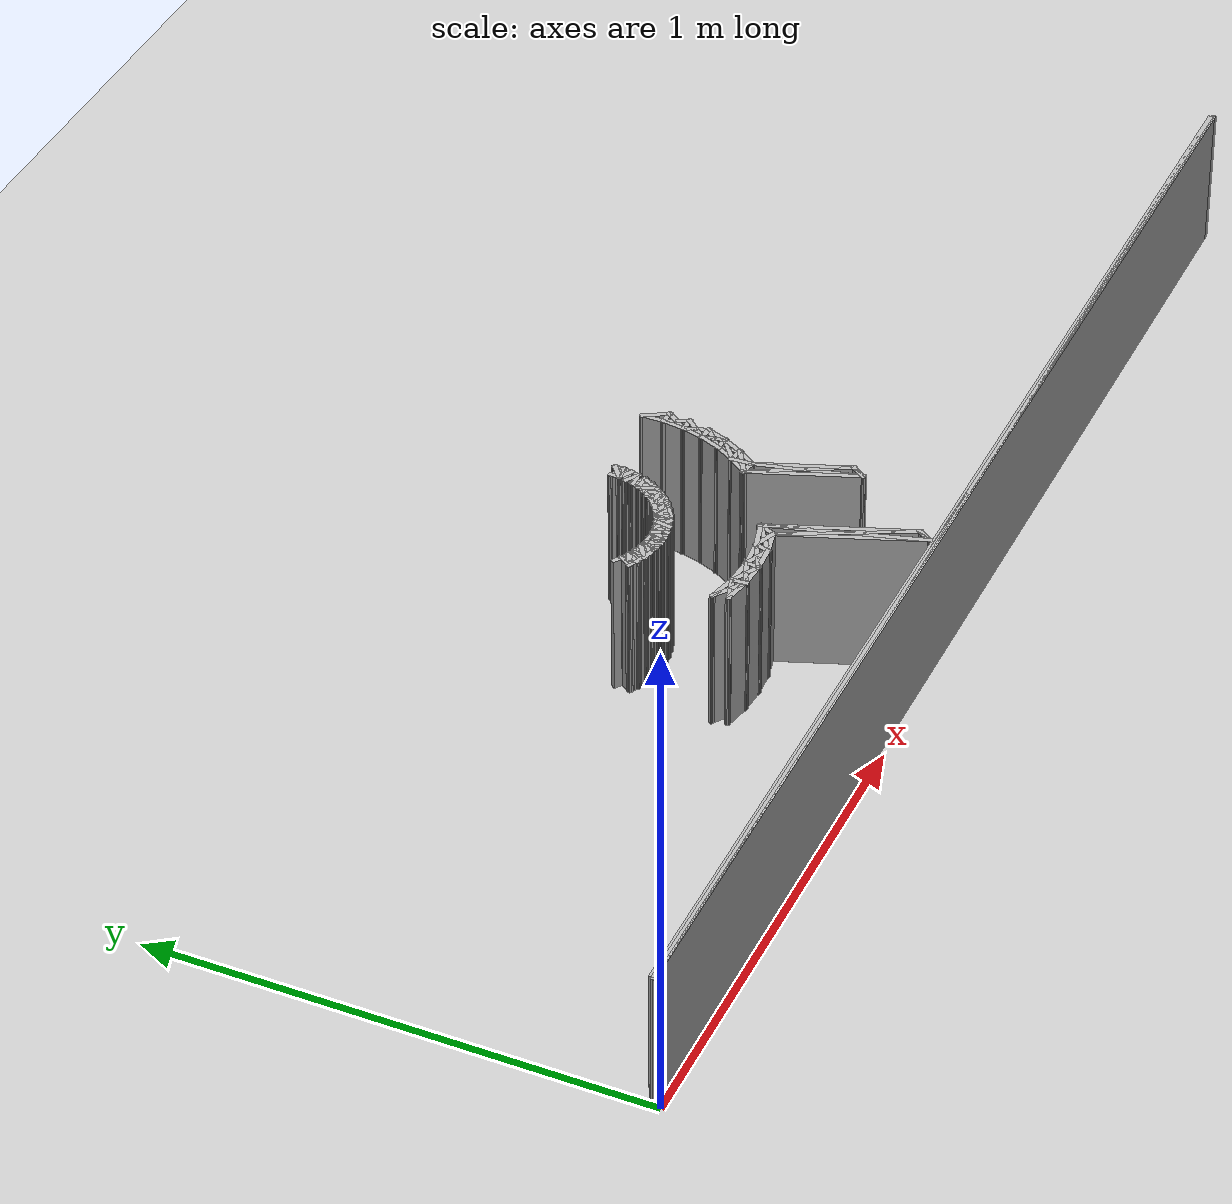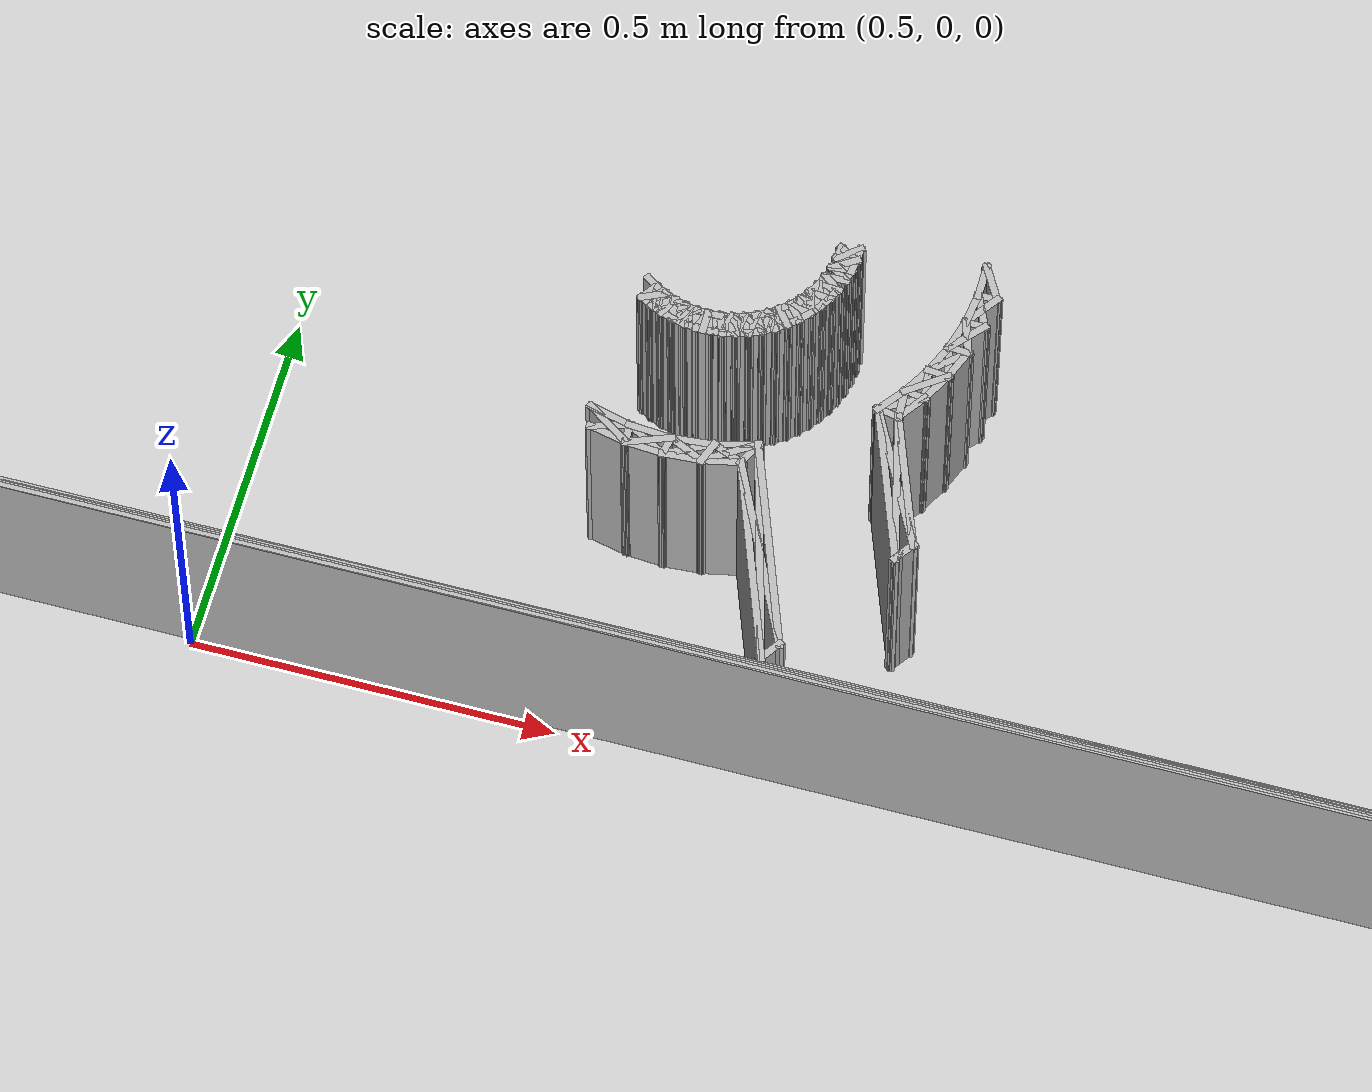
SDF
<sdf version="1.8">
 <world name="rosy_road">
  <model name="ground_plane">
   <link name="l">
    <visual name="v"><geometry><plane><normal>0 0 1</normal><size>4 2</size></plane></geometry></visual>
    <collision name="v"><geometry><plane><normal>0 0 1</normal><size>4 2</size></plane></geometry></collision>
   </link>
  </model>
  <model name="walls">
   <static>true</static>
   <link name="wall_008">
    <pose>1.4050 0.0175 0.150 0 0 0.0000</pose>
    <visual name="v"><geometry><box><size>2.8121 0.0100 0.300</size></box></geometry></visual>
    <collision name="c"><geometry><box><size>2.8121 0.0100 0.300</size></box></geometry></collision>
   </link>
   <link name="wall_009">
    <pose>1.4025 0.0150 0.150 0 0 -3.1398</pose>
    <visual name="v"><geometry><box><size>2.8171 0.0100 0.300</size></box></geometry></visual>
    <collision name="c"><geometry><box><size>2.8171 0.0100 0.300</size></box></geometry></collision>
   </link>
   <link name="wall_010">
    <pose>1.4050 0.0125 0.150 0 0 0.0000</pose>
    <visual name="v"><geometry><box><size>2.8221 0.0100 0.300</size></box></geometry></visual>
    <collision name="c"><geometry><box><size>2.8221 0.0100 0.300</size></box></geometry></collision>
   </link>
   <link name="wall_011">
    <pose>1.4075 0.0150 0.150 0 0 3.1398</pose>
    <visual name="v"><geometry><box><size>2.8171 0.0100 0.300</size></box></geometry></visual>
    <collision name="c"><geometry><box><size>2.8171 0.0100 0.300</size></box></geometry></collision>
   </link>
   <link name="wall_057">
    <pose>0.9921 0.3046 0.150 0 0 0.2941</pose>
    <visual name="v"><geometry><box><size>0.0624 0.0100 0.300</size></box></geometry></visual>
    <collision name="c"><geometry><box><size>0.0624 0.0100 0.300</size></box></geometry></collision>
   </link>
   <link name="wall_058">
    <pose>0.9885 0.3189 0.150 0 0 2.8953</pose>
    <visual name="v"><geometry><box><size>0.0690 0.0100 0.300</size></box></geometry></visual>
    <collision name="c"><geometry><box><size>0.0690 0.0100 0.300</size></box></geometry></collision>
   </link>
   <link name="wall_059">
    <pose>0.9894 0.3060 0.150 0 0 -0.6060</pose>
    <visual name="v"><geometry><box><size>0.0813 0.0100 0.300</size></box></geometry></visual>
    <collision name="c"><geometry><box><size>0.0813 0.0100 0.300</size></box></geometry></collision>
   </link>
   <link name="wall_060">
    <pose>0.9929 0.2918 0.150 0 0 2.9246</pose>
    <visual name="v"><geometry><box><size>0.0631 0.0100 0.300</size></box></geometry></visual>
    <collision name="c"><geometry><box><size>0.0631 0.0100 0.300</size></box></geometry></collision>
   </link>
   <link name="wall_066">
    <pose>1.0171 0.2991 0.150 0 0 -1.5045</pose>
    <visual name="v"><geometry><box><size>0.0377 0.0100 0.300</size></box></geometry></visual>
    <collision name="c"><geometry><box><size>0.0377 0.0100 0.300</size></box></geometry></collision>
   </link>
   <link name="wall_067">
    <pose>1.0434 0.2845 0.150 0 0 -0.0723</pose>
    <visual name="v"><geometry><box><size>0.0632 0.0100 0.300</size></box></geometry></visual>
    <collision name="c"><geometry><box><size>0.0632 0.0100 0.300</size></box></geometry></collision>
   </link>
   <link name="wall_068">
    <pose>1.0426 0.2973 0.150 0 0 2.6350</pose>
    <visual name="v"><geometry><box><size>0.0724 0.0100 0.300</size></box></geometry></visual>
    <collision name="c"><geometry><box><size>0.0724 0.0100 0.300</size></box></geometry></collision>
   </link>
   <link name="wall_069">
    <pose>1.0447 0.3098 0.150 0 0 -0.0753</pose>
    <visual name="v"><geometry><box><size>0.0692 0.0100 0.300</size></box></geometry></visual>
    <collision name="c"><geometry><box><size>0.0692 0.0100 0.300</size></box></geometry></collision>
   </link>
   <link name="wall_070">
    <pose>1.0455 0.2970 0.150 0 0 -2.7739</pose>
    <visual name="v"><geometry><box><size>0.0713 0.0100 0.300</size></box></geometry></visual>
    <collision name="c"><geometry><box><size>0.0713 0.0100 0.300</size></box></geometry></collision>
   </link>
   <link name="wall_076">
    <pose>1.0711 0.2951 0.150 0 0 1.4044</pose>
    <visual name="v"><geometry><box><size>0.0374 0.0100 0.300</size></box></geometry></visual>
    <collision name="c"><geometry><box><size>0.0374 0.0100 0.300</size></box></geometry></collision>
   </link>
   <link name="wall_077">
    <pose>1.0966 0.2968 0.150 0 0 -0.4324</pose>
    <visual name="v"><geometry><box><size>0.0635 0.0100 0.300</size></box></geometry></visual>
    <collision name="c"><geometry><box><size>0.0635 0.0100 0.300</size></box></geometry></collision>
   </link>
   <link name="wall_078">
    <pose>1.0945 0.2843 0.150 0 0 -3.0750</pose>
    <visual name="v"><geometry><box><size>0.0631 0.0100 0.300</size></box></geometry></visual>
    <collision name="c"><geometry><box><size>0.0631 0.0100 0.300</size></box></geometry></collision>
   </link>
   <link name="wall_079">
    <pose>1.0995 0.2978 0.150 0 0 0.4623</pose>
    <visual name="v"><geometry><box><size>0.0802 0.0100 0.300</size></box></geometry></visual>
    <collision name="c"><geometry><box><size>0.0802 0.0100 0.300</size></box></geometry></collision>
   </link>
   <link name="wall_080">
    <pose>1.1016 0.3103 0.150 0 0 -3.0468</pose>
    <visual name="v"><geometry><box><size>0.0691 0.0100 0.300</size></box></geometry></visual>
    <collision name="c"><geometry><box><size>0.0691 0.0100 0.300</size></box></geometry></collision>
   </link>
   <link name="wall_086">
    <pose>1.1250 0.2995 0.150 0 0 1.2161</pose>
    <visual name="v"><geometry><box><size>0.0408 0.0100 0.300</size></box></geometry></visual>
    <collision name="c"><geometry><box><size>0.0408 0.0100 0.300</size></box></geometry></collision>
   </link>
   <link name="wall_087">
    <pose>1.1501 0.3049 0.150 0 0 -0.3861</pose>
    <visual name="v"><geometry><box><size>0.0553 0.0100 0.300</size></box></geometry></visual>
    <collision name="c"><geometry><box><size>0.0553 0.0100 0.300</size></box></geometry></collision>
   </link>
   <link name="wall_088">
    <pose>1.1450 0.2913 0.150 0 0 -2.9312</pose>
    <visual name="v"><geometry><box><size>0.0632 0.0100 0.300</size></box></geometry></visual>
    <collision name="c"><geometry><box><size>0.0632 0.0100 0.300</size></box></geometry></collision>
   </link>
   <link name="wall_089">
    <pose>1.1525 0.3070 0.150 0 0 0.5719</pose>
    <visual name="v"><geometry><box><size>0.0894 0.0100 0.300</size></box></geometry></visual>
    <collision name="c"><geometry><box><size>0.0894 0.0100 0.300</size></box></geometry></collision>
   </link>
   <link name="wall_090">
    <pose>1.1575 0.3205 0.150 0 0 -2.8775</pose>
    <visual name="v"><geometry><box><size>0.0691 0.0100 0.300</size></box></geometry></visual>
    <collision name="c"><geometry><box><size>0.0691 0.0100 0.300</size></box></geometry></collision>
   </link>
   <link name="wall_096">
    <pose>1.1776 0.3123 0.150 0 0 1.1227</pose>
    <visual name="v"><geometry><box><size>0.0466 0.0100 0.300</size></box></geometry></visual>
    <collision name="c"><geometry><box><size>0.0466 0.0100 0.300</size></box></geometry></collision>
   </link>
   <link name="wall_097">
    <pose>1.2275 0.1777 0.150 0 0 -1.2953</pose>
    <visual name="v"><geometry><box><size>0.3241 0.0100 0.300</size></box></geometry></visual>
    <collision name="c"><geometry><box><size>0.3241 0.0100 0.300</size></box></geometry></collision>
   </link>
   <link name="wall_098">
    <pose>1.2200 0.1622 0.150 0 0 1.9263</pose>
    <visual name="v"><geometry><box><size>0.2990 0.0100 0.300</size></box></geometry></visual>
    <collision name="c"><geometry><box><size>0.2990 0.0100 0.300</size></box></geometry></collision>
   </link>
   <link name="wall_099">
    <pose>1.2288 0.1746 0.150 0 0 -1.1230</pose>
    <visual name="v"><geometry><box><size>0.2829 0.0100 0.300</size></box></geometry></visual>
    <collision name="c"><geometry><box><size>0.2829 0.0100 0.300</size></box></geometry></collision>
   </link>
   <link name="wall_100">
    <pose>1.2363 0.1902 0.150 0 0 1.9265</pose>
    <visual name="v"><geometry><box><size>0.3058 0.0100 0.300</size></box></geometry></visual>
    <collision name="c"><geometry><box><size>0.3058 0.0100 0.300</size></box></geometry></collision>
   </link>
   <link name="wall_111">
    <pose>1.2787 0.0400 0.150 0 0 0.9609</pose>
    <visual name="v"><geometry><box><size>0.0424 0.0100 0.300</size></box></geometry></visual>
    <collision name="c"><geometry><box><size>0.0424 0.0100 0.300</size></box></geometry></collision>
   </link>
   <link name="wall_116">
    <pose>1.2787 0.0400 0.150 0 0 -2.1807</pose>
    <visual name="v"><geometry><box><size>0.0424 0.0100 0.300</size></box></geometry></visual>
    <collision name="c"><geometry><box><size>0.0424 0.0100 0.300</size></box></geometry></collision>
   </link>
   <link name="wall_495">
    <pose>0.9877 0.5265 0.150 0 0 2.5257</pose>
    <visual name="v"><geometry><box><size>0.0279 0.0100 0.300</size></box></geometry></visual>
    <collision name="c"><geometry><box><size>0.0279 0.0100 0.300</size></box></geometry></collision>
   </link>
   <link name="wall_507">
    <pose>0.9872 0.5115 0.150 0 0 0.9761</pose>
    <visual name="v"><geometry><box><size>0.0370 0.0100 0.300</size></box></geometry></visual>
    <collision name="c"><geometry><box><size>0.0370 0.0100 0.300</size></box></geometry></collision>
   </link>
   <link name="wall_508">
    <pose>0.9947 0.5073 0.150 0 0 -1.5366</pose>
    <visual name="v"><geometry><box><size>0.0412 0.0100 0.300</size></box></geometry></visual>
    <collision name="c"><geometry><box><size>0.0412 0.0100 0.300</size></box></geometry></collision>
   </link>
   <link name="wall_509">
    <pose>0.9877 0.4970 0.150 0 0 2.6260</pose>
    <visual name="v"><geometry><box><size>0.0292 0.0100 0.300</size></box></geometry></visual>
    <collision name="c"><geometry><box><size>0.0292 0.0100 0.300</size></box></geometry></collision>
   </link>
   <link name="wall_510">
    <pose>0.9942 0.5077 0.150 0 0 0.4347</pose>
    <visual name="v"><geometry><box><size>0.0429 0.0100 0.300</size></box></geometry></visual>
    <collision name="c"><geometry><box><size>0.0429 0.0100 0.300</size></box></geometry></collision>
   </link>
   <link name="wall_511">
    <pose>1.0012 0.5180 0.150 0 0 2.6387</pose>
    <visual name="v"><geometry><box><size>0.0280 0.0100 0.300</size></box></geometry></visual>
    <collision name="c"><geometry><box><size>0.0280 0.0100 0.300</size></box></geometry></collision>
   </link>
   <link name="wall_512">
    <pose>1.0017 0.5035 0.150 0 0 1.0270</pose>
    <visual name="v"><geometry><box><size>0.0371 0.0100 0.300</size></box></geometry></visual>
    <collision name="c"><geometry><box><size>0.0371 0.0100 0.300</size></box></geometry></collision>
   </link>
   <link name="wall_513">
    <pose>1.0096 0.5000 0.150 0 0 -1.4725</pose>
    <visual name="v"><geometry><box><size>0.0405 0.0100 0.300</size></box></geometry></visual>
    <collision name="c"><geometry><box><size>0.0405 0.0100 0.300</size></box></geometry></collision>
   </link>
   <link name="wall_514">
    <pose>1.0031 0.4893 0.150 0 0 2.7298</pose>
    <visual name="v"><geometry><box><size>0.0292 0.0100 0.300</size></box></geometry></visual>
    <collision name="c"><geometry><box><size>0.0292 0.0100 0.300</size></box></geometry></collision>
   </link>
   <link name="wall_515">
    <pose>1.0091 0.5004 0.150 0 0 0.5031</pose>
    <visual name="v"><geometry><box><size>0.0437 0.0100 0.300</size></box></geometry></visual>
    <collision name="c"><geometry><box><size>0.0437 0.0100 0.300</size></box></geometry></collision>
   </link>
   <link name="wall_516">
    <pose>1.0156 0.5111 0.150 0 0 2.7449</pose>
    <visual name="v"><geometry><box><size>0.0280 0.0100 0.300</size></box></geometry></visual>
    <collision name="c"><geometry><box><size>0.0280 0.0100 0.300</size></box></geometry></collision>
   </link>
   <link name="wall_522">
    <pose>1.0170 0.4969 0.150 0 0 1.0752</pose>
    <visual name="v"><geometry><box><size>0.0372 0.0100 0.300</size></box></geometry></visual>
    <collision name="c"><geometry><box><size>0.0372 0.0100 0.300</size></box></geometry></collision>
   </link>
   <link name="wall_523">
    <pose>1.0252 0.4943 0.150 0 0 -1.4116</pose>
    <visual name="v"><geometry><box><size>0.0398 0.0100 0.300</size></box></geometry></visual>
    <collision name="c"><geometry><box><size>0.0398 0.0100 0.300</size></box></geometry></collision>
   </link>
   <link name="wall_524">
    <pose>1.0192 0.4832 0.150 0 0 2.8345</pose>
    <visual name="v"><geometry><box><size>0.0292 0.0100 0.300</size></box></geometry></visual>
    <collision name="c"><geometry><box><size>0.0292 0.0100 0.300</size></box></geometry></collision>
   </link>
   <link name="wall_525">
    <pose>1.0247 0.4947 0.150 0 0 0.5778</pose>
    <visual name="v"><geometry><box><size>0.0446 0.0100 0.300</size></box></geometry></visual>
    <collision name="c"><geometry><box><size>0.0446 0.0100 0.300</size></box></geometry></collision>
   </link>
   <link name="wall_526">
    <pose>1.0307 0.5058 0.150 0 0 2.8616</pose>
    <visual name="v"><geometry><box><size>0.0279 0.0100 0.300</size></box></geometry></visual>
    <collision name="c"><geometry><box><size>0.0279 0.0100 0.300</size></box></geometry></collision>
   </link>
   <link name="wall_532">
    <pose>1.0328 0.4921 0.150 0 0 1.1282</pose>
    <visual name="v"><geometry><box><size>0.0375 0.0100 0.300</size></box></geometry></visual>
    <collision name="c"><geometry><box><size>0.0375 0.0100 0.300</size></box></geometry></collision>
   </link>
   <link name="wall_533">
    <pose>1.0413 0.4903 0.150 0 0 -1.3489</pose>
    <visual name="v"><geometry><box><size>0.0393 0.0100 0.300</size></box></geometry></visual>
    <collision name="c"><geometry><box><size>0.0393 0.0100 0.300</size></box></geometry></collision>
   </link>
   <link name="wall_534">
    <pose>1.0358 0.4788 0.150 0 0 2.9317</pose>
    <visual name="v"><geometry><box><size>0.0293 0.0100 0.300</size></box></geometry></visual>
    <collision name="c"><geometry><box><size>0.0293 0.0100 0.300</size></box></geometry></collision>
   </link>
   <link name="wall_535">
    <pose>1.0408 0.4908 0.150 0 0 0.6501</pose>
    <visual name="v"><geometry><box><size>0.0455 0.0100 0.300</size></box></geometry></visual>
    <collision name="c"><geometry><box><size>0.0455 0.0100 0.300</size></box></geometry></collision>
   </link>
   <link name="wall_536">
    <pose>1.0462 0.5022 0.150 0 0 2.9723</pose>
    <visual name="v"><geometry><box><size>0.0280 0.0100 0.300</size></box></geometry></visual>
    <collision name="c"><geometry><box><size>0.0280 0.0100 0.300</size></box></geometry></collision>
   </link>
   <link name="wall_542">
    <pose>1.0492 0.4889 0.150 0 0 1.1817</pose>
    <visual name="v"><geometry><box><size>0.0378 0.0100 0.300</size></box></geometry></visual>
    <collision name="c"><geometry><box><size>0.0378 0.0100 0.300</size></box></geometry></collision>
   </link>
   <link name="wall_543">
    <pose>1.0577 0.4881 0.150 0 0 -1.2930</pose>
    <visual name="v"><geometry><box><size>0.0386 0.0100 0.300</size></box></geometry></visual>
    <collision name="c"><geometry><box><size>0.0386 0.0100 0.300</size></box></geometry></collision>
   </link>
   <link name="wall_544">
    <pose>1.0528 0.4761 0.150 0 0 3.0425</pose>
    <visual name="v"><geometry><box><size>0.0292 0.0100 0.300</size></box></geometry></visual>
    <collision name="c"><geometry><box><size>0.0292 0.0100 0.300</size></box></geometry></collision>
   </link>
   <link name="wall_545">
    <pose>1.0621 0.5005 0.150 0 0 -0.0500</pose>
    <visual name="v"><geometry><box><size>0.0280 0.0100 0.300</size></box></geometry></visual>
    <collision name="c"><geometry><box><size>0.0280 0.0100 0.300</size></box></geometry></collision>
   </link>
   <link name="wall_546">
    <pose>1.0657 0.4877 0.150 0 0 -1.9082</pose>
    <visual name="v"><geometry><box><size>0.0383 0.0100 0.300</size></box></geometry></visual>
    <collision name="c"><geometry><box><size>0.0383 0.0100 0.300</size></box></geometry></collision>
   </link>
   <link name="wall_547">
    <pose>1.0657 0.4752 0.150 0 0 -0.0230</pose>
    <visual name="v"><geometry><box><size>0.0207 0.0100 0.300</size></box></geometry></visual>
    <collision name="c"><geometry><box><size>0.0207 0.0100 0.300</size></box></geometry></collision>
   </link>
   <link name="wall_548">
    <pose>1.0701 0.4876 0.150 0 0 1.5708</pose>
    <visual name="v"><geometry><box><size>0.0370 0.0100 0.300</size></box></geometry></visual>
    <collision name="c"><geometry><box><size>0.0370 0.0100 0.300</size></box></geometry></collision>
   </link>
   <link name="wall_549">
    <pose>1.0744 0.4877 0.150 0 0 -1.2370</pose>
    <visual name="v"><geometry><box><size>0.0382 0.0100 0.300</size></box></geometry></visual>
    <collision name="c"><geometry><box><size>0.0382 0.0100 0.300</size></box></geometry></collision>
   </link>
   <link name="wall_550">
    <pose>1.0744 0.4752 0.150 0 0 -3.1183</pose>
    <visual name="v"><geometry><box><size>0.0206 0.0100 0.300</size></box></geometry></visual>
    <collision name="c"><geometry><box><size>0.0206 0.0100 0.300</size></box></geometry></collision>
   </link>
   <link name="wall_556">
    <pose>1.0780 0.5005 0.150 0 0 0.0503</pose>
    <visual name="v"><geometry><box><size>0.0279 0.0100 0.300</size></box></geometry></visual>
    <collision name="c"><geometry><box><size>0.0279 0.0100 0.300</size></box></geometry></collision>
   </link>
   <link name="wall_557">
    <pose>1.0823 0.4881 0.150 0 0 -1.8486</pose>
    <visual name="v"><geometry><box><size>0.0386 0.0100 0.300</size></box></geometry></visual>
    <collision name="c"><geometry><box><size>0.0386 0.0100 0.300</size></box></geometry></collision>
   </link>
   <link name="wall_558">
    <pose>1.0873 0.4761 0.150 0 0 0.0991</pose>
    <visual name="v"><geometry><box><size>0.0292 0.0100 0.300</size></box></geometry></visual>
    <collision name="c"><geometry><box><size>0.0292 0.0100 0.300</size></box></geometry></collision>
   </link>
   <link name="wall_559">
    <pose>1.0909 0.4889 0.150 0 0 1.9599</pose>
    <visual name="v"><geometry><box><size>0.0378 0.0100 0.300</size></box></geometry></visual>
    <collision name="c"><geometry><box><size>0.0378 0.0100 0.300</size></box></geometry></collision>
   </link>
   <link name="wall_560">
    <pose>1.0939 0.5022 0.150 0 0 0.1693</pose>
    <visual name="v"><geometry><box><size>0.0280 0.0100 0.300</size></box></geometry></visual>
    <collision name="c"><geometry><box><size>0.0280 0.0100 0.300</size></box></geometry></collision>
   </link>
   <link name="wall_561">
    <pose>1.0988 0.4903 0.150 0 0 -1.7926</pose>
    <visual name="v"><geometry><box><size>0.0393 0.0100 0.300</size></box></geometry></visual>
    <collision name="c"><geometry><box><size>0.0393 0.0100 0.300</size></box></geometry></collision>
   </link>
   <link name="wall_562">
    <pose>1.1042 0.4788 0.150 0 0 0.2099</pose>
    <visual name="v"><geometry><box><size>0.0293 0.0100 0.300</size></box></geometry></visual>
    <collision name="c"><geometry><box><size>0.0293 0.0100 0.300</size></box></geometry></collision>
   </link>
   <link name="wall_563">
    <pose>1.0993 0.4908 0.150 0 0 2.4915</pose>
    <visual name="v"><geometry><box><size>0.0455 0.0100 0.300</size></box></geometry></visual>
    <collision name="c"><geometry><box><size>0.0455 0.0100 0.300</size></box></geometry></collision>
   </link>
   <link name="wall_574">
    <pose>1.1073 0.4921 0.150 0 0 -1.1282</pose>
    <visual name="v"><geometry><box><size>0.0375 0.0100 0.300</size></box></geometry></visual>
    <collision name="c"><geometry><box><size>0.0375 0.0100 0.300</size></box></geometry></collision>
   </link>
   <link name="wall_575">
    <pose>1.1149 0.4943 0.150 0 0 1.4116</pose>
    <visual name="v"><geometry><box><size>0.0398 0.0100 0.300</size></box></geometry></visual>
    <collision name="c"><geometry><box><size>0.0398 0.0100 0.300</size></box></geometry></collision>
   </link>
   <link name="wall_576">
    <pose>1.1094 0.5058 0.150 0 0 -2.8616</pose>
    <visual name="v"><geometry><box><size>0.0279 0.0100 0.300</size></box></geometry></visual>
    <collision name="c"><geometry><box><size>0.0279 0.0100 0.300</size></box></geometry></collision>
   </link>
   <link name="wall_577">
    <pose>1.1154 0.4947 0.150 0 0 -0.5778</pose>
    <visual name="v"><geometry><box><size>0.0446 0.0100 0.300</size></box></geometry></visual>
    <collision name="c"><geometry><box><size>0.0446 0.0100 0.300</size></box></geometry></collision>
   </link>
   <link name="wall_578">
    <pose>1.1209 0.4832 0.150 0 0 -2.8345</pose>
    <visual name="v"><geometry><box><size>0.0292 0.0100 0.300</size></box></geometry></visual>
    <collision name="c"><geometry><box><size>0.0292 0.0100 0.300</size></box></geometry></collision>
   </link>
   <link name="wall_584">
    <pose>1.1231 0.4969 0.150 0 0 -1.0752</pose>
    <visual name="v"><geometry><box><size>0.0372 0.0100 0.300</size></box></geometry></visual>
    <collision name="c"><geometry><box><size>0.0372 0.0100 0.300</size></box></geometry></collision>
   </link>
   <link name="wall_585">
    <pose>1.1305 0.5000 0.150 0 0 1.4725</pose>
    <visual name="v"><geometry><box><size>0.0405 0.0100 0.300</size></box></geometry></visual>
    <collision name="c"><geometry><box><size>0.0405 0.0100 0.300</size></box></geometry></collision>
   </link>
   <link name="wall_586">
    <pose>1.1245 0.5111 0.150 0 0 -2.7449</pose>
    <visual name="v"><geometry><box><size>0.0280 0.0100 0.300</size></box></geometry></visual>
    <collision name="c"><geometry><box><size>0.0280 0.0100 0.300</size></box></geometry></collision>
   </link>
   <link name="wall_587">
    <pose>1.1310 0.5004 0.150 0 0 -0.5031</pose>
    <visual name="v"><geometry><box><size>0.0437 0.0100 0.300</size></box></geometry></visual>
    <collision name="c"><geometry><box><size>0.0437 0.0100 0.300</size></box></geometry></collision>
   </link>
   <link name="wall_588">
    <pose>1.1370 0.4893 0.150 0 0 -2.7298</pose>
    <visual name="v"><geometry><box><size>0.0292 0.0100 0.300</size></box></geometry></visual>
    <collision name="c"><geometry><box><size>0.0292 0.0100 0.300</size></box></geometry></collision>
   </link>
   <link name="wall_594">
    <pose>1.1384 0.5035 0.150 0 0 -1.0270</pose>
    <visual name="v"><geometry><box><size>0.0371 0.0100 0.300</size></box></geometry></visual>
    <collision name="c"><geometry><box><size>0.0371 0.0100 0.300</size></box></geometry></collision>
   </link>
   <link name="wall_595">
    <pose>1.1454 0.5073 0.150 0 0 1.5366</pose>
    <visual name="v"><geometry><box><size>0.0412 0.0100 0.300</size></box></geometry></visual>
    <collision name="c"><geometry><box><size>0.0412 0.0100 0.300</size></box></geometry></collision>
   </link>
   <link name="wall_596">
    <pose>1.1389 0.5180 0.150 0 0 -2.6387</pose>
    <visual name="v"><geometry><box><size>0.0280 0.0100 0.300</size></box></geometry></visual>
    <collision name="c"><geometry><box><size>0.0280 0.0100 0.300</size></box></geometry></collision>
   </link>
   <link name="wall_597">
    <pose>1.1459 0.5077 0.150 0 0 -0.4347</pose>
    <visual name="v"><geometry><box><size>0.0429 0.0100 0.300</size></box></geometry></visual>
    <collision name="c"><geometry><box><size>0.0429 0.0100 0.300</size></box></geometry></collision>
   </link>
   <link name="wall_598">
    <pose>1.1524 0.4970 0.150 0 0 -2.6260</pose>
    <visual name="v"><geometry><box><size>0.0292 0.0100 0.300</size></box></geometry></visual>
    <collision name="c"><geometry><box><size>0.0292 0.0100 0.300</size></box></geometry></collision>
   </link>
   <link name="wall_604">
    <pose>1.1524 0.5265 0.150 0 0 0.6159</pose>
    <visual name="v"><geometry><box><size>0.0279 0.0100 0.300</size></box></geometry></visual>
    <collision name="c"><geometry><box><size>0.0279 0.0100 0.300</size></box></geometry></collision>
   </link>
   <link name="wall_605">
    <pose>1.1594 0.5161 0.150 0 0 -1.5374</pose>
    <visual name="v"><geometry><box><size>0.0419 0.0100 0.300</size></box></geometry></visual>
    <collision name="c"><geometry><box><size>0.0419 0.0100 0.300</size></box></geometry></collision>
   </link>
   <link name="wall_606">
    <pose>1.1529 0.5115 0.150 0 0 2.1655</pose>
    <visual name="v"><geometry><box><size>0.0370 0.0100 0.300</size></box></geometry></visual>
    <collision name="c"><geometry><box><size>0.0370 0.0100 0.300</size></box></geometry></collision>
   </link>
   <link name="wall_607">
    <pose>1.1600 0.5165 0.150 0 0 -0.3638</pose>
    <visual name="v"><geometry><box><size>0.0421 0.0100 0.300</size></box></geometry></visual>
    <collision name="c"><geometry><box><size>0.0421 0.0100 0.300</size></box></geometry></collision>
   </link>
   <link name="wall_608">
    <pose>1.1670 0.5062 0.150 0 0 -2.5247</pose>
    <visual name="v"><geometry><box><size>0.0293 0.0100 0.300</size></box></geometry></visual>
    <collision name="c"><geometry><box><size>0.0293 0.0100 0.300</size></box></geometry></collision>
   </link>
   <link name="wall_620">
    <pose>1.1648 0.5365 0.150 0 0 0.7324</pose>
    <visual name="v"><geometry><box><size>0.0280 0.0100 0.300</size></box></geometry></visual>
    <collision name="c"><geometry><box><size>0.0280 0.0100 0.300</size></box></geometry></collision>
   </link>
   <link name="wall_621">
    <pose>1.1724 0.5265 0.150 0 0 -1.4666</pose>
    <visual name="v"><geometry><box><size>0.0428 0.0100 0.300</size></box></geometry></visual>
    <collision name="c"><geometry><box><size>0.0428 0.0100 0.300</size></box></geometry></collision>
   </link>
   <link name="wall_622">
    <pose>1.1664 0.5212 0.150 0 0 2.2199</pose>
    <visual name="v"><geometry><box><size>0.0370 0.0100 0.300</size></box></geometry></visual>
    <collision name="c"><geometry><box><size>0.0370 0.0100 0.300</size></box></geometry></collision>
   </link>
   <link name="wall_623">
    <pose>1.1729 0.5269 0.150 0 0 -0.2937</pose>
    <visual name="v"><geometry><box><size>0.0414 0.0100 0.300</size></box></geometry></visual>
    <collision name="c"><geometry><box><size>0.0414 0.0100 0.300</size></box></geometry></collision>
   </link>
   <link name="wall_624">
    <pose>1.1805 0.5169 0.150 0 0 -2.4217</pose>
    <visual name="v"><geometry><box><size>0.0293 0.0100 0.300</size></box></geometry></visual>
    <collision name="c"><geometry><box><size>0.0293 0.0100 0.300</size></box></geometry></collision>
   </link>
   <link name="wall_625">
    <pose>1.1762 0.5477 0.150 0 0 0.8384</pose>
    <visual name="v"><geometry><box><size>0.0280 0.0100 0.300</size></box></geometry></visual>
    <collision name="c"><geometry><box><size>0.0280 0.0100 0.300</size></box></geometry></collision>
   </link>
   <link name="wall_626">
    <pose>1.1843 0.5382 0.150 0 0 -1.3958</pose>
    <visual name="v"><geometry><box><size>0.0436 0.0100 0.300</size></box></geometry></visual>
    <collision name="c"><geometry><box><size>0.0436 0.0100 0.300</size></box></geometry></collision>
   </link>
   <link name="wall_627">
    <pose>1.1789 0.5322 0.150 0 0 2.2717</pose>
    <visual name="v"><geometry><box><size>0.0371 0.0100 0.300</size></box></geometry></visual>
    <collision name="c"><geometry><box><size>0.0371 0.0100 0.300</size></box></geometry></collision>
   </link>
   <link name="wall_628">
    <pose>1.1847 0.5385 0.150 0 0 -0.2289</pose>
    <visual name="v"><geometry><box><size>0.0406 0.0100 0.300</size></box></geometry></visual>
    <collision name="c"><geometry><box><size>0.0406 0.0100 0.300</size></box></geometry></collision>
   </link>
   <link name="wall_629">
    <pose>1.1928 0.5290 0.150 0 0 -2.3152</pose>
    <visual name="v"><geometry><box><size>0.0293 0.0100 0.300</size></box></geometry></visual>
    <collision name="c"><geometry><box><size>0.0293 0.0100 0.300</size></box></geometry></collision>
   </link>
   <link name="wall_635">
    <pose>1.1861 0.5602 0.150 0 0 0.9549</pose>
    <visual name="v"><geometry><box><size>0.0279 0.0100 0.300</size></box></geometry></visual>
    <collision name="c"><geometry><box><size>0.0279 0.0100 0.300</size></box></geometry></collision>
   </link>
   <link name="wall_636">
    <pose>1.1947 0.5510 0.150 0 0 -1.3213</pose>
    <visual name="v"><geometry><box><size>0.0444 0.0100 0.300</size></box></geometry></visual>
    <collision name="c"><geometry><box><size>0.0444 0.0100 0.300</size></box></geometry></collision>
   </link>
   <link name="wall_637">
    <pose>1.1901 0.5445 0.150 0 0 2.3225</pose>
    <visual name="v"><geometry><box><size>0.0372 0.0100 0.300</size></box></geometry></visual>
    <collision name="c"><geometry><box><size>0.0372 0.0100 0.300</size></box></geometry></collision>
   </link>
   <link name="wall_638">
    <pose>1.1952 0.5514 0.150 0 0 -0.1693</pose>
    <visual name="v"><geometry><box><size>0.0399 0.0100 0.300</size></box></geometry></visual>
    <collision name="c"><geometry><box><size>0.0399 0.0100 0.300</size></box></geometry></collision>
   </link>
   <link name="wall_639">
    <pose>1.2038 0.5422 0.150 0 0 -2.2155</pose>
    <visual name="v"><geometry><box><size>0.0291 0.0100 0.300</size></box></geometry></visual>
    <collision name="c"><geometry><box><size>0.0291 0.0100 0.300</size></box></geometry></collision>
   </link>
   <link name="wall_645">
    <pose>1.1946 0.5737 0.150 0 0 1.0680</pose>
    <visual name="v"><geometry><box><size>0.0280 0.0100 0.300</size></box></geometry></visual>
    <collision name="c"><geometry><box><size>0.0280 0.0100 0.300</size></box></geometry></collision>
   </link>
   <link name="wall_646">
    <pose>1.2037 0.5649 0.150 0 0 -1.2481</pose>
    <visual name="v"><geometry><box><size>0.0454 0.0100 0.300</size></box></geometry></visual>
    <collision name="c"><geometry><box><size>0.0454 0.0100 0.300</size></box></geometry></collision>
   </link>
   <link name="wall_647">
    <pose>1.1998 0.5579 0.150 0 0 2.3729</pose>
    <visual name="v"><geometry><box><size>0.0375 0.0100 0.300</size></box></geometry></visual>
    <collision name="c"><geometry><box><size>0.0375 0.0100 0.300</size></box></geometry></collision>
   </link>
   <link name="wall_648">
    <pose>1.2043 0.5653 0.150 0 0 -0.1062</pose>
    <visual name="v"><geometry><box><size>0.0394 0.0100 0.300</size></box></geometry></visual>
    <collision name="c"><geometry><box><size>0.0394 0.0100 0.300</size></box></geometry></collision>
   </link>
   <link name="wall_649">
    <pose>1.2135 0.5564 0.150 0 0 -2.1122</pose>
    <visual name="v"><geometry><box><size>0.0293 0.0100 0.300</size></box></geometry></visual>
    <collision name="c"><geometry><box><size>0.0293 0.0100 0.300</size></box></geometry></collision>
   </link>
   <link name="wall_655">
    <pose>1.2015 0.5881 0.150 0 0 1.1741</pose>
    <visual name="v"><geometry><box><size>0.0280 0.0100 0.300</size></box></geometry></visual>
    <collision name="c"><geometry><box><size>0.0280 0.0100 0.300</size></box></geometry></collision>
   </link>
   <link name="wall_656">
    <pose>1.2112 0.5796 0.150 0 0 -1.1735</pose>
    <visual name="v"><geometry><box><size>0.0464 0.0100 0.300</size></box></geometry></visual>
    <collision name="c"><geometry><box><size>0.0464 0.0100 0.300</size></box></geometry></collision>
   </link>
   <link name="wall_657">
    <pose>1.2082 0.5723 0.150 0 0 2.4275</pose>
    <visual name="v"><geometry><box><size>0.0378 0.0100 0.300</size></box></geometry></visual>
    <collision name="c"><geometry><box><size>0.0378 0.0100 0.300</size></box></geometry></collision>
   </link>
   <link name="wall_658">
    <pose>1.2118 0.5800 0.150 0 0 -0.0485</pose>
    <visual name="v"><geometry><box><size>0.0388 0.0100 0.300</size></box></geometry></visual>
    <collision name="c"><geometry><box><size>0.0388 0.0100 0.300</size></box></geometry></collision>
   </link>
   <link name="wall_659">
    <pose>1.2216 0.5716 0.150 0 0 -2.0085</pose>
    <visual name="v"><geometry><box><size>0.0292 0.0100 0.300</size></box></geometry></visual>
    <collision name="c"><geometry><box><size>0.0292 0.0100 0.300</size></box></geometry></collision>
   </link>
   <link name="wall_665">
    <pose>1.2122 0.6345 0.150 0 0 1.5143</pose>
    <visual name="v"><geometry><box><size>0.0279 0.0100 0.300</size></box></geometry></visual>
    <collision name="c"><geometry><box><size>0.0279 0.0100 0.300</size></box></geometry></collision>
   </link>
   <link name="wall_666">
    <pose>1.2248 0.6361 0.150 0 0 -0.4846</pose>
    <visual name="v"><geometry><box><size>0.0397 0.0100 0.300</size></box></geometry></visual>
    <collision name="c"><geometry><box><size>0.0397 0.0100 0.300</size></box></geometry></collision>
   </link>
   <link name="wall_667">
    <pose>1.2230 0.6202 0.150 0 0 -2.5519</pose>
    <visual name="v"><geometry><box><size>0.0458 0.0100 0.300</size></box></geometry></visual>
    <collision name="c"><geometry><box><size>0.0458 0.0100 0.300</size></box></geometry></collision>
   </link>
   <link name="wall_668">
    <pose>1.2200 0.6032 0.150 0 0 -0.6036</pose>
    <visual name="v"><geometry><box><size>0.0386 0.0100 0.300</size></box></geometry></visual>
    <collision name="c"><geometry><box><size>0.0386 0.0100 0.300</size></box></geometry></collision>
   </link>
   <link name="wall_669">
    <pose>1.2178 0.5956 0.150 0 0 -3.1340</pose>
    <visual name="v"><geometry><box><size>0.0383 0.0100 0.300</size></box></geometry></visual>
    <collision name="c"><geometry><box><size>0.0383 0.0100 0.300</size></box></geometry></collision>
   </link>
   <link name="wall_670">
    <pose>1.2149 0.5875 0.150 0 0 -0.6634</pose>
    <visual name="v"><geometry><box><size>0.0381 0.0100 0.300</size></box></geometry></visual>
    <collision name="c"><geometry><box><size>0.0381 0.0100 0.300</size></box></geometry></collision>
   </link>
   <link name="wall_671">
    <pose>1.2329 0.6041 0.150 0 0 1.3427</pose>
    <visual name="v"><geometry><box><size>0.0292 0.0100 0.300</size></box></geometry></visual>
    <collision name="c"><geometry><box><size>0.0292 0.0100 0.300</size></box></geometry></collision>
   </link>
   <link name="wall_672">
    <pose>1.2219 0.6117 0.150 0 0 -3.0758</pose>
    <visual name="v"><geometry><box><size>0.0379 0.0100 0.300</size></box></geometry></visual>
    <collision name="c"><geometry><box><size>0.0379 0.0100 0.300</size></box></geometry></collision>
   </link>
   <link name="wall_683">
    <pose>1.2232 0.6195 0.150 0 0 -0.5480</pose>
    <visual name="v"><geometry><box><size>0.0391 0.0100 0.300</size></box></geometry></visual>
    <collision name="c"><geometry><box><size>0.0391 0.0100 0.300</size></box></geometry></collision>
   </link>
   <link name="wall_684">
    <pose>1.2359 0.6210 0.150 0 0 1.4371</pose>
    <visual name="v"><geometry><box><size>0.0293 0.0100 0.300</size></box></geometry></visual>
    <collision name="c"><geometry><box><size>0.0293 0.0100 0.300</size></box></geometry></collision>
   </link>
   <link name="wall_685">
    <pose>1.2244 0.6281 0.150 0 0 -3.0240</pose>
    <visual name="v"><geometry><box><size>0.0376 0.0100 0.300</size></box></geometry></visual>
    <collision name="c"><geometry><box><size>0.0376 0.0100 0.300</size></box></geometry></collision>
   </link>
   <link name="wall_686">
    <pose>1.2246 0.6368 0.150 0 0 0.6667</pose>
    <visual name="v"><geometry><box><size>0.0448 0.0100 0.300</size></box></geometry></visual>
    <collision name="c"><geometry><box><size>0.0448 0.0100 0.300</size></box></geometry></collision>
   </link>
   <link name="wall_687">
    <pose>1.2373 0.6382 0.150 0 0 -1.5939</pose>
    <visual name="v"><geometry><box><size>0.0293 0.0100 0.300</size></box></geometry></visual>
    <collision name="c"><geometry><box><size>0.0293 0.0100 0.300</size></box></geometry></collision>
   </link>
   <link name="wall_694">
    <pose>1.3347 0.4384 0.150 0 0 0.9159</pose>
    <visual name="v"><geometry><box><size>0.0560 0.0100 0.300</size></box></geometry></visual>
    <collision name="c"><geometry><box><size>0.0560 0.0100 0.300</size></box></geometry></collision>
   </link>
   <link name="wall_695">
    <pose>1.3489 0.4359 0.150 0 0 -1.5282</pose>
    <visual name="v"><geometry><box><size>0.0519 0.0100 0.300</size></box></geometry></visual>
    <collision name="c"><geometry><box><size>0.0519 0.0100 0.300</size></box></geometry></collision>
   </link>
   <link name="wall_696">
    <pose>1.3356 0.4184 0.150 0 0 2.9679</pose>
    <visual name="v"><geometry><box><size>0.0409 0.0100 0.300</size></box></geometry></visual>
    <collision name="c"><geometry><box><size>0.0409 0.0100 0.300</size></box></geometry></collision>
   </link>
   <link name="wall_697">
    <pose>1.3484 0.4365 0.150 0 0 0.5229</pose>
    <visual name="v"><geometry><box><size>0.0747 0.0100 0.300</size></box></geometry></visual>
    <collision name="c"><geometry><box><size>0.0747 0.0100 0.300</size></box></geometry></collision>
   </link>
   <link name="wall_698">
    <pose>1.3619 0.4540 0.150 0 0 3.0114</pose>
    <visual name="v"><geometry><box><size>0.0397 0.0100 0.300</size></box></geometry></visual>
    <collision name="c"><geometry><box><size>0.0397 0.0100 0.300</size></box></geometry></collision>
   </link>
   <link name="wall_699">
    <pose>1.3592 0.4748 0.150 0 0 1.0440</pose>
    <visual name="v"><geometry><box><size>0.0560 0.0100 0.300</size></box></geometry></visual>
    <collision name="c"><geometry><box><size>0.0560 0.0100 0.300</size></box></geometry></collision>
   </link>
   <link name="wall_700">
    <pose>1.3729 0.4730 0.150 0 0 -1.4417</pose>
    <visual name="v"><geometry><box><size>0.0539 0.0100 0.300</size></box></geometry></visual>
    <collision name="c"><geometry><box><size>0.0539 0.0100 0.300</size></box></geometry></collision>
   </link>
   <link name="wall_701">
    <pose>1.3627 0.4340 0.150 0 0 -2.1887</pose>
    <visual name="v"><geometry><box><size>0.0565 0.0100 0.300</size></box></geometry></visual>
    <collision name="c"><geometry><box><size>0.0565 0.0100 0.300</size></box></geometry></collision>
   </link>
   <link name="wall_702">
    <pose>1.3742 0.3142 0.150 0 0 -1.3349</pose>
    <visual name="v"><geometry><box><size>0.2212 0.0100 0.300</size></box></geometry></visual>
    <collision name="c"><geometry><box><size>0.2212 0.0100 0.300</size></box></geometry></collision>
   </link>
   <link name="wall_703">
    <pose>1.3600 0.3167 0.150 0 0 1.9264</pose>
    <visual name="v"><geometry><box><size>0.2343 0.0100 0.300</size></box></geometry></visual>
    <collision name="c"><geometry><box><size>0.2343 0.0100 0.300</size></box></geometry></collision>
   </link>
   <link name="wall_704">
    <pose>1.3687 0.3292 0.150 0 0 -1.0935</pose>
    <visual name="v"><geometry><box><size>0.2184 0.0100 0.300</size></box></geometry></visual>
    <collision name="c"><geometry><box><size>0.2184 0.0100 0.300</size></box></geometry></collision>
   </link>
   <link name="wall_705">
    <pose>1.3829 0.3267 0.150 0 0 1.9268</pose>
    <visual name="v"><geometry><box><size>0.2022 0.0100 0.300</size></box></geometry></visual>
    <collision name="c"><geometry><box><size>0.2022 0.0100 0.300</size></box></geometry></collision>
   </link>
   <link name="wall_706">
    <pose>1.3724 0.4736 0.150 0 0 0.6312</pose>
    <visual name="v"><geometry><box><size>0.0723 0.0100 0.300</size></box></geometry></visual>
    <collision name="c"><geometry><box><size>0.0723 0.0100 0.300</size></box></geometry></collision>
   </link>
   <link name="wall_707">
    <pose>1.3862 0.4718 0.150 0 0 -2.0666</pose>
    <visual name="v"><geometry><box><size>0.0566 0.0100 0.300</size></box></geometry></visual>
    <collision name="c"><geometry><box><size>0.0566 0.0100 0.300</size></box></geometry></collision>
   </link>
   <link name="wall_708">
    <pose>1.4074 0.2251 0.150 0 0 0.9646</pose>
    <visual name="v"><geometry><box><size>0.0425 0.0100 0.300</size></box></geometry></visual>
    <collision name="c"><geometry><box><size>0.0425 0.0100 0.300</size></box></geometry></collision>
   </link>
   <link name="wall_713">
    <pose>1.4074 0.2251 0.150 0 0 -2.1770</pose>
    <visual name="v"><geometry><box><size>0.0425 0.0100 0.300</size></box></geometry></visual>
    <collision name="c"><geometry><box><size>0.0425 0.0100 0.300</size></box></geometry></collision>
   </link>
   <link name="wall_714">
    <pose>1.3787 0.5141 0.150 0 0 1.1764</pose>
    <visual name="v"><geometry><box><size>0.0560 0.0100 0.300</size></box></geometry></visual>
    <collision name="c"><geometry><box><size>0.0560 0.0100 0.300</size></box></geometry></collision>
   </link>
   <link name="wall_715">
    <pose>1.3919 0.5129 0.150 0 0 -1.3489</pose>
    <visual name="v"><geometry><box><size>0.0561 0.0100 0.300</size></box></geometry></visual>
    <collision name="c"><geometry><box><size>0.0561 0.0100 0.300</size></box></geometry></collision>
   </link>
   <link name="wall_716">
    <pose>1.3835 0.4926 0.150 0 0 3.0516</pose>
    <visual name="v"><geometry><box><size>0.0387 0.0100 0.300</size></box></geometry></visual>
    <collision name="c"><geometry><box><size>0.0387 0.0100 0.300</size></box></geometry></collision>
   </link>
   <link name="wall_717">
    <pose>1.3916 0.5133 0.150 0 0 0.7414</pose>
    <visual name="v"><geometry><box><size>0.0699 0.0100 0.300</size></box></geometry></visual>
    <collision name="c"><geometry><box><size>0.0699 0.0100 0.300</size></box></geometry></collision>
   </link>
   <link name="wall_718">
    <pose>1.4048 0.5121 0.150 0 0 -1.9409</pose>
    <visual name="v"><geometry><box><size>0.0565 0.0100 0.300</size></box></geometry></visual>
    <collision name="c"><geometry><box><size>0.0565 0.0100 0.300</size></box></geometry></collision>
   </link>
   <link name="wall_724">
    <pose>1.3928 0.5556 0.150 0 0 1.3065</pose>
    <visual name="v"><geometry><box><size>0.0560 0.0100 0.300</size></box></geometry></visual>
    <collision name="c"><geometry><box><size>0.0560 0.0100 0.300</size></box></geometry></collision>
   </link>
   <link name="wall_725">
    <pose>1.4058 0.5549 0.150 0 0 -1.2566</pose>
    <visual name="v"><geometry><box><size>0.0583 0.0100 0.300</size></box></geometry></visual>
    <collision name="c"><geometry><box><size>0.0583 0.0100 0.300</size></box></geometry></collision>
   </link>
   <link name="wall_726">
    <pose>1.4000 0.5336 0.150 0 0 3.0835</pose>
    <visual name="v"><geometry><box><size>0.0378 0.0100 0.300</size></box></geometry></visual>
    <collision name="c"><geometry><box><size>0.0378 0.0100 0.300</size></box></geometry></collision>
   </link>
   <link name="wall_727">
    <pose>1.4055 0.5553 0.150 0 0 0.8477</pose>
    <visual name="v"><geometry><box><size>0.0676 0.0100 0.300</size></box></geometry></visual>
    <collision name="c"><geometry><box><size>0.0676 0.0100 0.300</size></box></geometry></collision>
   </link>
   <link name="wall_734">
    <pose>1.4014 0.5987 0.150 0 0 1.4408</pose>
    <visual name="v"><geometry><box><size>0.0560 0.0100 0.300</size></box></geometry></visual>
    <collision name="c"><geometry><box><size>0.0560 0.0100 0.300</size></box></geometry></collision>
   </link>
   <link name="wall_735">
    <pose>1.4141 0.5983 0.150 0 0 -1.1551</pose>
    <visual name="v"><geometry><box><size>0.0605 0.0100 0.300</size></box></geometry></visual>
    <collision name="c"><geometry><box><size>0.0605 0.0100 0.300</size></box></geometry></collision>
   </link>
   <link name="wall_736">
    <pose>1.4112 0.5765 0.150 0 0 3.1100</pose>
    <visual name="v"><geometry><box><size>0.0373 0.0100 0.300</size></box></geometry></visual>
    <collision name="c"><geometry><box><size>0.0373 0.0100 0.300</size></box></geometry></collision>
   </link>
   <link name="wall_737">
    <pose>1.4140 0.5986 0.150 0 0 0.9536</pose>
    <visual name="v"><geometry><box><size>0.0652 0.0100 0.300</size></box></geometry></visual>
    <collision name="c"><geometry><box><size>0.0652 0.0100 0.300</size></box></geometry></collision>
   </link>
   <link name="wall_744">
    <pose>1.4043 0.6425 0.150 0 0 1.5708</pose>
    <visual name="v"><geometry><box><size>0.0561 0.0100 0.300</size></box></geometry></visual>
    <collision name="c"><geometry><box><size>0.0561 0.0100 0.300</size></box></geometry></collision>
   </link>
   <link name="wall_745">
    <pose>1.4168 0.6425 0.150 0 0 -1.0553</pose>
    <visual name="v"><geometry><box><size>0.0629 0.0100 0.300</size></box></geometry></visual>
    <collision name="c"><geometry><box><size>0.0629 0.0100 0.300</size></box></geometry></collision>
   </link>
   <link name="wall_746">
    <pose>1.4168 0.6204 0.150 0 0 3.1336</pose>
    <visual name="v"><geometry><box><size>0.0371 0.0100 0.300</size></box></geometry></visual>
    <collision name="c"><geometry><box><size>0.0371 0.0100 0.300</size></box></geometry></collision>
   </link>
  </model>
 </world>
</sdf>
